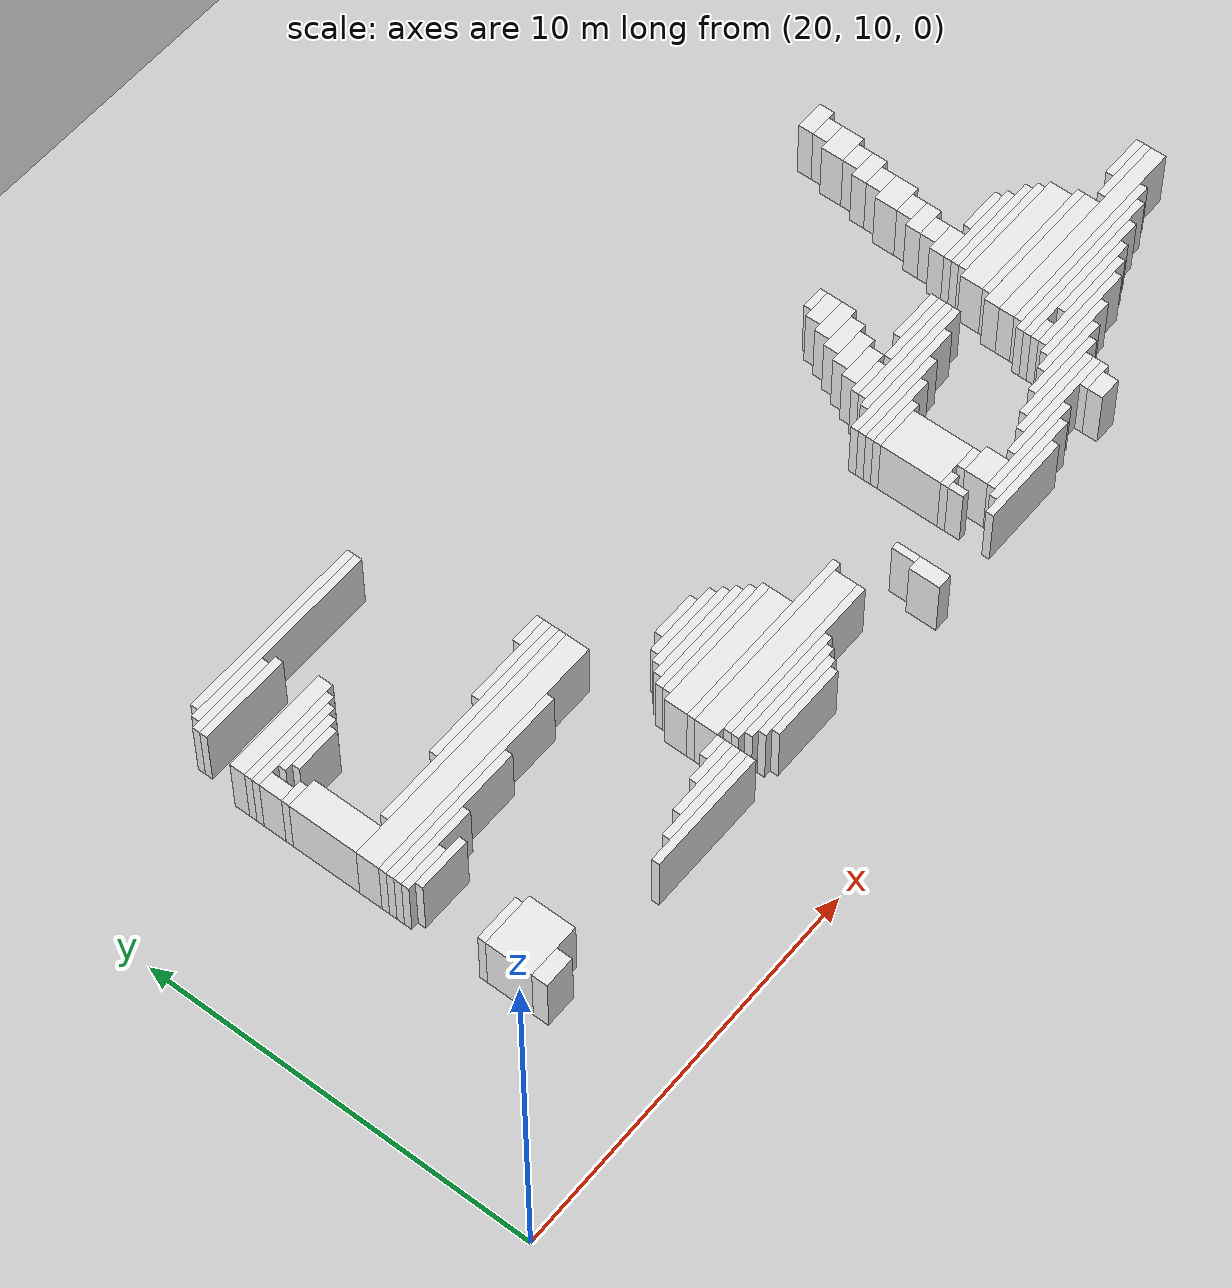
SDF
<sdf version="1.7">
 <world name="default">
  <model name="ground_plane">
   <static>1</static>
   <link name="link">
    <collision name="collision">
     <geometry><plane><normal>0 0 1</normal><size>120 120</size></plane></geometry>
    </collision>
    <visual name="visual">
     <geometry><plane><normal>0 0 1</normal><size>120 120</size></plane></geometry>
     <material>
      <script><uri>file://media/materials/scripts/gazebo.material</uri><name>Gazebo/Grey</name></script>
     </material>
    </visual>
   </link>
  </model>
  <model name="random_complex_01_model">
   <static>1</static>
   <link name="obs_915">
    <pose>27.1000 22.7000 0.8000 0 0 0</pose>
    <collision name="obs_915_col"><geometry><box><size>5.0000 0.2000 1.6000</size></box></geometry></collision>
    <visual name="obs_915_vis">
     <geometry><box><size>5.0000 0.2000 1.6000</size></box></geometry>
     <material>
      <script><uri>file://media/materials/scripts/gazebo.material</uri><name>Gazebo/White</name></script>
     </material>
    </visual>
   </link>
   <link name="obs_925">
    <pose>27.0000 22.5000 0.8000 0 0 0</pose>
    <collision name="obs_925_col"><geometry><box><size>5.2000 0.2000 1.6000</size></box></geometry></collision>
    <visual name="obs_925_vis">
     <geometry><box><size>5.2000 0.2000 1.6000</size></box></geometry>
     <material>
      <script><uri>file://media/materials/scripts/gazebo.material</uri><name>Gazebo/White</name></script>
     </material>
    </visual>
   </link>
   <link name="obs_931">
    <pose>25.3000 22.3000 0.8000 0 0 0</pose>
    <collision name="obs_931_col"><geometry><box><size>2.2000 0.2000 1.6000</size></box></geometry></collision>
    <visual name="obs_931_vis">
     <geometry><box><size>2.2000 0.2000 1.6000</size></box></geometry>
     <material>
      <script><uri>file://media/materials/scripts/gazebo.material</uri><name>Gazebo/White</name></script>
     </material>
    </visual>
   </link>
   <link name="obs_934">
    <pose>45.2000 22.2000 0.8000 0 0 0</pose>
    <collision name="obs_934_col"><geometry><box><size>0.8000 0.4000 1.6000</size></box></geometry></collision>
    <visual name="obs_934_vis">
     <geometry><box><size>0.8000 0.4000 1.6000</size></box></geometry>
     <material>
      <script><uri>file://media/materials/scripts/gazebo.material</uri><name>Gazebo/White</name></script>
     </material>
    </visual>
   </link>
   <link name="obs_939">
    <pose>25.4000 22.1000 0.8000 0 0 0</pose>
    <collision name="obs_939_col"><geometry><box><size>2.4000 0.2000 1.6000</size></box></geometry></collision>
    <visual name="obs_939_vis">
     <geometry><box><size>2.4000 0.2000 1.6000</size></box></geometry>
     <material>
      <script><uri>file://media/materials/scripts/gazebo.material</uri><name>Gazebo/White</name></script>
     </material>
    </visual>
   </link>
   <link name="obs_952">
    <pose>45.1000 21.8000 0.8000 0 0 0</pose>
    <collision name="obs_952_col"><geometry><box><size>0.6000 0.4000 1.6000</size></box></geometry></collision>
    <visual name="obs_952_vis">
     <geometry><box><size>0.6000 0.4000 1.6000</size></box></geometry>
     <material>
      <script><uri>file://media/materials/scripts/gazebo.material</uri><name>Gazebo/White</name></script>
     </material>
    </visual>
   </link>
   <link name="obs_959">
    <pose>45.0000 21.3000 0.8000 0 0 0</pose>
    <collision name="obs_959_col"><geometry><box><size>0.8000 0.6000 1.6000</size></box></geometry></collision>
    <visual name="obs_959_vis">
     <geometry><box><size>0.8000 0.6000 1.6000</size></box></geometry>
     <material>
      <script><uri>file://media/materials/scripts/gazebo.material</uri><name>Gazebo/White</name></script>
     </material>
    </visual>
   </link>
   <link name="obs_962">
    <pose>25.4000 21.0000 0.8000 0 0 0</pose>
    <collision name="obs_962_col"><geometry><box><size>2.8000 0.4000 1.6000</size></box></geometry></collision>
    <visual name="obs_962_vis">
     <geometry><box><size>2.8000 0.4000 1.6000</size></box></geometry>
     <material>
      <script><uri>file://media/materials/scripts/gazebo.material</uri><name>Gazebo/White</name></script>
     </material>
    </visual>
   </link>
   <link name="obs_963">
    <pose>44.9000 20.8000 0.8000 0 0 0</pose>
    <collision name="obs_963_col"><geometry><box><size>0.6000 0.4000 1.6000</size></box></geometry></collision>
    <visual name="obs_963_vis">
     <geometry><box><size>0.6000 0.4000 1.6000</size></box></geometry>
     <material>
      <script><uri>file://media/materials/scripts/gazebo.material</uri><name>Gazebo/White</name></script>
     </material>
    </visual>
   </link>
   <link name="obs_967">
    <pose>25.3000 20.7000 0.8000 0 0 0</pose>
    <collision name="obs_967_col"><geometry><box><size>2.6000 0.2000 1.6000</size></box></geometry></collision>
    <visual name="obs_967_vis">
     <geometry><box><size>2.6000 0.2000 1.6000</size></box></geometry>
     <material>
      <script><uri>file://media/materials/scripts/gazebo.material</uri><name>Gazebo/White</name></script>
     </material>
    </visual>
   </link>
   <link name="obs_971">
    <pose>25.2000 20.5000 0.8000 0 0 0</pose>
    <collision name="obs_971_col"><geometry><box><size>2.4000 0.2000 1.6000</size></box></geometry></collision>
    <visual name="obs_971_vis">
     <geometry><box><size>2.4000 0.2000 1.6000</size></box></geometry>
     <material>
      <script><uri>file://media/materials/scripts/gazebo.material</uri><name>Gazebo/White</name></script>
     </material>
    </visual>
   </link>
   <link name="obs_972">
    <pose>44.8000 20.4000 0.8000 0 0 0</pose>
    <collision name="obs_972_col"><geometry><box><size>0.8000 0.4000 1.6000</size></box></geometry></collision>
    <visual name="obs_972_vis">
     <geometry><box><size>0.8000 0.4000 1.6000</size></box></geometry>
     <material>
      <script><uri>file://media/materials/scripts/gazebo.material</uri><name>Gazebo/White</name></script>
     </material>
    </visual>
   </link>
   <link name="obs_976">
    <pose>25.4000 20.3000 0.8000 0 0 0</pose>
    <collision name="obs_976_col"><geometry><box><size>1.6000 0.2000 1.6000</size></box></geometry></collision>
    <visual name="obs_976_vis">
     <geometry><box><size>1.6000 0.2000 1.6000</size></box></geometry>
     <material>
      <script><uri>file://media/materials/scripts/gazebo.material</uri><name>Gazebo/White</name></script>
     </material>
    </visual>
   </link>
   <link name="obs_984">
    <pose>25.4000 20.1000 0.8000 0 0 0</pose>
    <collision name="obs_984_col"><geometry><box><size>1.2000 0.2000 1.6000</size></box></geometry></collision>
    <visual name="obs_984_vis">
     <geometry><box><size>1.2000 0.2000 1.6000</size></box></geometry>
     <material>
      <script><uri>file://media/materials/scripts/gazebo.material</uri><name>Gazebo/White</name></script>
     </material>
    </visual>
   </link>
   <link name="obs_985">
    <pose>24.2000 20.1000 0.8000 0 0 0</pose>
    <collision name="obs_985_col"><geometry><box><size>0.4000 0.6000 1.6000</size></box></geometry></collision>
    <visual name="obs_985_vis">
     <geometry><box><size>0.4000 0.6000 1.6000</size></box></geometry>
     <material>
      <script><uri>file://media/materials/scripts/gazebo.material</uri><name>Gazebo/White</name></script>
     </material>
    </visual>
   </link>
   <link name="obs_987">
    <pose>44.7000 20.0000 0.8000 0 0 0</pose>
    <collision name="obs_987_col"><geometry><box><size>0.6000 0.4000 1.6000</size></box></geometry></collision>
    <visual name="obs_987_vis">
     <geometry><box><size>0.6000 0.4000 1.6000</size></box></geometry>
     <material>
      <script><uri>file://media/materials/scripts/gazebo.material</uri><name>Gazebo/White</name></script>
     </material>
    </visual>
   </link>
   <link name="obs_996">
    <pose>24.3000 19.7000 0.8000 0 0 0</pose>
    <collision name="obs_996_col"><geometry><box><size>0.6000 0.2000 1.6000</size></box></geometry></collision>
    <visual name="obs_996_vis">
     <geometry><box><size>0.6000 0.2000 1.6000</size></box></geometry>
     <material>
      <script><uri>file://media/materials/scripts/gazebo.material</uri><name>Gazebo/White</name></script>
     </material>
    </visual>
   </link>
   <link name="obs_1003">
    <pose>44.6000 19.5000 0.8000 0 0 0</pose>
    <collision name="obs_1003_col"><geometry><box><size>0.8000 0.6000 1.6000</size></box></geometry></collision>
    <visual name="obs_1003_vis">
     <geometry><box><size>0.8000 0.6000 1.6000</size></box></geometry>
     <material>
      <script><uri>file://media/materials/scripts/gazebo.material</uri><name>Gazebo/White</name></script>
     </material>
    </visual>
   </link>
   <link name="obs_1014">
    <pose>41.1000 19.1000 0.8000 0 0 0</pose>
    <collision name="obs_1014_col"><geometry><box><size>0.6000 0.2000 1.6000</size></box></geometry></collision>
    <visual name="obs_1014_vis">
     <geometry><box><size>0.6000 0.2000 1.6000</size></box></geometry>
     <material>
      <script><uri>file://media/materials/scripts/gazebo.material</uri><name>Gazebo/White</name></script>
     </material>
    </visual>
   </link>
   <link name="obs_1015">
    <pose>44.5000 19.0000 0.8000 0 0 0</pose>
    <collision name="obs_1015_col"><geometry><box><size>0.6000 0.4000 1.6000</size></box></geometry></collision>
    <visual name="obs_1015_vis">
     <geometry><box><size>0.6000 0.4000 1.6000</size></box></geometry>
     <material>
      <script><uri>file://media/materials/scripts/gazebo.material</uri><name>Gazebo/White</name></script>
     </material>
    </visual>
   </link>
   <link name="obs_1024">
    <pose>41.0000 18.8000 0.8000 0 0 0</pose>
    <collision name="obs_1024_col"><geometry><box><size>0.8000 0.4000 1.6000</size></box></geometry></collision>
    <visual name="obs_1024_vis">
     <geometry><box><size>0.8000 0.4000 1.6000</size></box></geometry>
     <material>
      <script><uri>file://media/materials/scripts/gazebo.material</uri><name>Gazebo/White</name></script>
     </material>
    </visual>
   </link>
   <link name="obs_1029">
    <pose>44.4000 18.6000 0.8000 0 0 0</pose>
    <collision name="obs_1029_col"><geometry><box><size>0.8000 0.4000 1.6000</size></box></geometry></collision>
    <visual name="obs_1029_vis">
     <geometry><box><size>0.8000 0.4000 1.6000</size></box></geometry>
     <material>
      <script><uri>file://media/materials/scripts/gazebo.material</uri><name>Gazebo/White</name></script>
     </material>
    </visual>
   </link>
   <link name="obs_1032">
    <pose>30.4000 18.5000 0.8000 0 0 0</pose>
    <collision name="obs_1032_col"><geometry><box><size>0.8000 0.2000 1.6000</size></box></geometry></collision>
    <visual name="obs_1032_vis">
     <geometry><box><size>0.8000 0.2000 1.6000</size></box></geometry>
     <material>
      <script><uri>file://media/materials/scripts/gazebo.material</uri><name>Gazebo/White</name></script>
     </material>
    </visual>
   </link>
   <link name="obs_1037">
    <pose>40.9000 18.4000 0.8000 0 0 0</pose>
    <collision name="obs_1037_col"><geometry><box><size>1.0000 0.4000 1.6000</size></box></geometry></collision>
    <visual name="obs_1037_vis">
     <geometry><box><size>1.0000 0.4000 1.6000</size></box></geometry>
     <material>
      <script><uri>file://media/materials/scripts/gazebo.material</uri><name>Gazebo/White</name></script>
     </material>
    </visual>
   </link>
   <link name="obs_1044">
    <pose>29.6000 18.3000 0.8000 0 0 0</pose>
    <collision name="obs_1044_col"><geometry><box><size>2.4000 0.2000 1.6000</size></box></geometry></collision>
    <visual name="obs_1044_vis">
     <geometry><box><size>2.4000 0.2000 1.6000</size></box></geometry>
     <material>
      <script><uri>file://media/materials/scripts/gazebo.material</uri><name>Gazebo/White</name></script>
     </material>
    </visual>
   </link>
   <link name="obs_1046">
    <pose>44.3000 18.2000 0.8000 0 0 0</pose>
    <collision name="obs_1046_col"><geometry><box><size>0.6000 0.4000 1.6000</size></box></geometry></collision>
    <visual name="obs_1046_vis">
     <geometry><box><size>0.6000 0.4000 1.6000</size></box></geometry>
     <material>
      <script><uri>file://media/materials/scripts/gazebo.material</uri><name>Gazebo/White</name></script>
     </material>
    </visual>
   </link>
   <link name="obs_1052">
    <pose>28.8000 18.1000 0.8000 0 0 0</pose>
    <collision name="obs_1052_col"><geometry><box><size>4.0000 0.2000 1.6000</size></box></geometry></collision>
    <visual name="obs_1052_vis">
     <geometry><box><size>4.0000 0.2000 1.6000</size></box></geometry>
     <material>
      <script><uri>file://media/materials/scripts/gazebo.material</uri><name>Gazebo/White</name></script>
     </material>
    </visual>
   </link>
   <link name="obs_1053">
    <pose>24.4000 18.7000 0.8000 0 0 0</pose>
    <collision name="obs_1053_col"><geometry><box><size>0.8000 1.8000 1.6000</size></box></geometry></collision>
    <visual name="obs_1053_vis">
     <geometry><box><size>0.8000 1.8000 1.6000</size></box></geometry>
     <material>
      <script><uri>file://media/materials/scripts/gazebo.material</uri><name>Gazebo/White</name></script>
     </material>
    </visual>
   </link>
   <link name="obs_1059">
    <pose>40.7000 18.0000 0.8000 0 0 0</pose>
    <collision name="obs_1059_col"><geometry><box><size>1.0000 0.4000 1.6000</size></box></geometry></collision>
    <visual name="obs_1059_vis">
     <geometry><box><size>1.0000 0.4000 1.6000</size></box></geometry>
     <material>
      <script><uri>file://media/materials/scripts/gazebo.material</uri><name>Gazebo/White</name></script>
     </material>
    </visual>
   </link>
   <link name="obs_1065">
    <pose>27.9000 17.9000 0.8000 0 0 0</pose>
    <collision name="obs_1065_col"><geometry><box><size>5.8000 0.2000 1.6000</size></box></geometry></collision>
    <visual name="obs_1065_vis">
     <geometry><box><size>5.8000 0.2000 1.6000</size></box></geometry>
     <material>
      <script><uri>file://media/materials/scripts/gazebo.material</uri><name>Gazebo/White</name></script>
     </material>
    </visual>
   </link>
   <link name="obs_1067">
    <pose>44.2000 17.8000 0.8000 0 0 0</pose>
    <collision name="obs_1067_col"><geometry><box><size>0.8000 0.4000 1.6000</size></box></geometry></collision>
    <visual name="obs_1067_vis">
     <geometry><box><size>0.8000 0.4000 1.6000</size></box></geometry>
     <material>
      <script><uri>file://media/materials/scripts/gazebo.material</uri><name>Gazebo/White</name></script>
     </material>
    </visual>
   </link>
   <link name="obs_1072">
    <pose>45.4000 17.7000 0.8000 0 0 0</pose>
    <collision name="obs_1072_col"><geometry><box><size>1.2000 0.2000 1.6000</size></box></geometry></collision>
    <visual name="obs_1072_vis">
     <geometry><box><size>1.2000 0.2000 1.6000</size></box></geometry>
     <material>
      <script><uri>file://media/materials/scripts/gazebo.material</uri><name>Gazebo/White</name></script>
     </material>
    </visual>
   </link>
   <link name="obs_1075">
    <pose>40.5000 17.6000 0.8000 0 0 0</pose>
    <collision name="obs_1075_col"><geometry><box><size>1.0000 0.4000 1.6000</size></box></geometry></collision>
    <visual name="obs_1075_vis">
     <geometry><box><size>1.0000 0.4000 1.6000</size></box></geometry>
     <material>
      <script><uri>file://media/materials/scripts/gazebo.material</uri><name>Gazebo/White</name></script>
     </material>
    </visual>
   </link>
   <link name="obs_1079">
    <pose>45.0000 17.5000 0.8000 0 0 0</pose>
    <collision name="obs_1079_col"><geometry><box><size>2.4000 0.2000 1.6000</size></box></geometry></collision>
    <visual name="obs_1079_vis">
     <geometry><box><size>2.4000 0.2000 1.6000</size></box></geometry>
     <material>
      <script><uri>file://media/materials/scripts/gazebo.material</uri><name>Gazebo/White</name></script>
     </material>
    </visual>
   </link>
   <link name="obs_1081">
    <pose>27.4000 17.5000 0.8000 0 0 0</pose>
    <collision name="obs_1081_col"><geometry><box><size>6.8000 0.6000 1.6000</size></box></geometry></collision>
    <visual name="obs_1081_vis">
     <geometry><box><size>6.8000 0.6000 1.6000</size></box></geometry>
     <material>
      <script><uri>file://media/materials/scripts/gazebo.material</uri><name>Gazebo/White</name></script>
     </material>
    </visual>
   </link>
   <link name="obs_1086">
    <pose>45.2000 17.3000 0.8000 0 0 0</pose>
    <collision name="obs_1086_col"><geometry><box><size>2.8000 0.2000 1.6000</size></box></geometry></collision>
    <visual name="obs_1086_vis">
     <geometry><box><size>2.8000 0.2000 1.6000</size></box></geometry>
     <material>
      <script><uri>file://media/materials/scripts/gazebo.material</uri><name>Gazebo/White</name></script>
     </material>
    </visual>
   </link>
   <link name="obs_1089">
    <pose>40.3000 17.2000 0.8000 0 0 0</pose>
    <collision name="obs_1089_col"><geometry><box><size>1.0000 0.4000 1.6000</size></box></geometry></collision>
    <visual name="obs_1089_vis">
     <geometry><box><size>1.0000 0.4000 1.6000</size></box></geometry>
     <material>
      <script><uri>file://media/materials/scripts/gazebo.material</uri><name>Gazebo/White</name></script>
     </material>
    </visual>
   </link>
   <link name="obs_1094">
    <pose>26.7000 17.1000 0.8000 0 0 0</pose>
    <collision name="obs_1094_col"><geometry><box><size>5.4000 0.2000 1.6000</size></box></geometry></collision>
    <visual name="obs_1094_vis">
     <geometry><box><size>5.4000 0.2000 1.6000</size></box></geometry>
     <material>
      <script><uri>file://media/materials/scripts/gazebo.material</uri><name>Gazebo/White</name></script>
     </material>
    </visual>
   </link>
   <link name="obs_1095">
    <pose>42.1000 17.1000 0.8000 0 0 0</pose>
    <collision name="obs_1095_col"><geometry><box><size>1.4000 0.2000 1.6000</size></box></geometry></collision>
    <visual name="obs_1095_vis">
     <geometry><box><size>1.4000 0.2000 1.6000</size></box></geometry>
     <material>
      <script><uri>file://media/materials/scripts/gazebo.material</uri><name>Gazebo/White</name></script>
     </material>
    </visual>
   </link>
   <link name="obs_1096">
    <pose>45.3000 17.1000 0.8000 0 0 0</pose>
    <collision name="obs_1096_col"><geometry><box><size>3.0000 0.2000 1.6000</size></box></geometry></collision>
    <visual name="obs_1096_vis">
     <geometry><box><size>3.0000 0.2000 1.6000</size></box></geometry>
     <material>
      <script><uri>file://media/materials/scripts/gazebo.material</uri><name>Gazebo/White</name></script>
     </material>
    </visual>
   </link>
   <link name="obs_1101">
    <pose>25.9000 16.9000 0.8000 0 0 0</pose>
    <collision name="obs_1101_col"><geometry><box><size>3.8000 0.2000 1.6000</size></box></geometry></collision>
    <visual name="obs_1101_vis">
     <geometry><box><size>3.8000 0.2000 1.6000</size></box></geometry>
     <material>
      <script><uri>file://media/materials/scripts/gazebo.material</uri><name>Gazebo/White</name></script>
     </material>
    </visual>
   </link>
   <link name="obs_1102">
    <pose>40.1000 16.9000 0.8000 0 0 0</pose>
    <collision name="obs_1102_col"><geometry><box><size>1.0000 0.2000 1.6000</size></box></geometry></collision>
    <visual name="obs_1102_vis">
     <geometry><box><size>1.0000 0.2000 1.6000</size></box></geometry>
     <material>
      <script><uri>file://media/materials/scripts/gazebo.material</uri><name>Gazebo/White</name></script>
     </material>
    </visual>
   </link>
   <link name="obs_1103">
    <pose>41.8000 16.9000 0.8000 0 0 0</pose>
    <collision name="obs_1103_col"><geometry><box><size>2.0000 0.2000 1.6000</size></box></geometry></collision>
    <visual name="obs_1103_vis">
     <geometry><box><size>2.0000 0.2000 1.6000</size></box></geometry>
     <material>
      <script><uri>file://media/materials/scripts/gazebo.material</uri><name>Gazebo/White</name></script>
     </material>
    </visual>
   </link>
   <link name="obs_1112">
    <pose>25.1000 16.7000 0.8000 0 0 0</pose>
    <collision name="obs_1112_col"><geometry><box><size>2.2000 0.2000 1.6000</size></box></geometry></collision>
    <visual name="obs_1112_vis">
     <geometry><box><size>2.2000 0.2000 1.6000</size></box></geometry>
     <material>
      <script><uri>file://media/materials/scripts/gazebo.material</uri><name>Gazebo/White</name></script>
     </material>
    </visual>
   </link>
   <link name="obs_1113">
    <pose>41.2000 16.7000 0.8000 0 0 0</pose>
    <collision name="obs_1113_col"><geometry><box><size>3.2000 0.2000 1.6000</size></box></geometry></collision>
    <visual name="obs_1113_vis">
     <geometry><box><size>3.2000 0.2000 1.6000</size></box></geometry>
     <material>
      <script><uri>file://media/materials/scripts/gazebo.material</uri><name>Gazebo/White</name></script>
     </material>
    </visual>
   </link>
   <link name="obs_1114">
    <pose>45.3000 16.7000 0.8000 0 0 0</pose>
    <collision name="obs_1114_col"><geometry><box><size>3.4000 0.6000 1.6000</size></box></geometry></collision>
    <visual name="obs_1114_vis">
     <geometry><box><size>3.4000 0.6000 1.6000</size></box></geometry>
     <material>
      <script><uri>file://media/materials/scripts/gazebo.material</uri><name>Gazebo/White</name></script>
     </material>
    </visual>
   </link>
   <link name="obs_1119">
    <pose>24.6000 16.5000 0.8000 0 0 0</pose>
    <collision name="obs_1119_col"><geometry><box><size>1.2000 0.2000 1.6000</size></box></geometry></collision>
    <visual name="obs_1119_vis">
     <geometry><box><size>1.2000 0.2000 1.6000</size></box></geometry>
     <material>
      <script><uri>file://media/materials/scripts/gazebo.material</uri><name>Gazebo/White</name></script>
     </material>
    </visual>
   </link>
   <link name="obs_1120">
    <pose>41.1000 16.5000 0.8000 0 0 0</pose>
    <collision name="obs_1120_col"><geometry><box><size>3.4000 0.2000 1.6000</size></box></geometry></collision>
    <visual name="obs_1120_vis">
     <geometry><box><size>3.4000 0.2000 1.6000</size></box></geometry>
     <material>
      <script><uri>file://media/materials/scripts/gazebo.material</uri><name>Gazebo/White</name></script>
     </material>
    </visual>
   </link>
   <link name="obs_1127">
    <pose>24.9000 16.3000 0.8000 0 0 0</pose>
    <collision name="obs_1127_col"><geometry><box><size>1.4000 0.2000 1.6000</size></box></geometry></collision>
    <visual name="obs_1127_vis">
     <geometry><box><size>1.4000 0.2000 1.6000</size></box></geometry>
     <material>
      <script><uri>file://media/materials/scripts/gazebo.material</uri><name>Gazebo/White</name></script>
     </material>
    </visual>
   </link>
   <link name="obs_1128">
    <pose>32.6000 16.3000 0.8000 0 0 0</pose>
    <collision name="obs_1128_col"><geometry><box><size>1.2000 0.2000 1.6000</size></box></geometry></collision>
    <visual name="obs_1128_vis">
     <geometry><box><size>1.2000 0.2000 1.6000</size></box></geometry>
     <material>
      <script><uri>file://media/materials/scripts/gazebo.material</uri><name>Gazebo/White</name></script>
     </material>
    </visual>
   </link>
   <link name="obs_1129">
    <pose>40.5000 16.3000 0.8000 0 0 0</pose>
    <collision name="obs_1129_col"><geometry><box><size>3.4000 0.2000 1.6000</size></box></geometry></collision>
    <visual name="obs_1129_vis">
     <geometry><box><size>3.4000 0.2000 1.6000</size></box></geometry>
     <material>
      <script><uri>file://media/materials/scripts/gazebo.material</uri><name>Gazebo/White</name></script>
     </material>
    </visual>
   </link>
   <link name="obs_1130">
    <pose>45.4000 16.3000 0.8000 0 0 0</pose>
    <collision name="obs_1130_col"><geometry><box><size>3.6000 0.2000 1.6000</size></box></geometry></collision>
    <visual name="obs_1130_vis">
     <geometry><box><size>3.6000 0.2000 1.6000</size></box></geometry>
     <material>
      <script><uri>file://media/materials/scripts/gazebo.material</uri><name>Gazebo/White</name></script>
     </material>
    </visual>
   </link>
   <link name="obs_1137">
    <pose>32.6000 16.1000 0.8000 0 0 0</pose>
    <collision name="obs_1137_col"><geometry><box><size>2.0000 0.2000 1.6000</size></box></geometry></collision>
    <visual name="obs_1137_vis">
     <geometry><box><size>2.0000 0.2000 1.6000</size></box></geometry>
     <material>
      <script><uri>file://media/materials/scripts/gazebo.material</uri><name>Gazebo/White</name></script>
     </material>
    </visual>
   </link>
   <link name="obs_1138">
    <pose>40.1000 16.1000 0.8000 0 0 0</pose>
    <collision name="obs_1138_col"><geometry><box><size>2.6000 0.2000 1.6000</size></box></geometry></collision>
    <visual name="obs_1138_vis">
     <geometry><box><size>2.6000 0.2000 1.6000</size></box></geometry>
     <material>
      <script><uri>file://media/materials/scripts/gazebo.material</uri><name>Gazebo/White</name></script>
     </material>
    </visual>
   </link>
   <link name="obs_1139">
    <pose>48.6000 16.1000 0.8000 0 0 0</pose>
    <collision name="obs_1139_col"><geometry><box><size>1.2000 0.2000 1.6000</size></box></geometry></collision>
    <visual name="obs_1139_vis">
     <geometry><box><size>1.2000 0.2000 1.6000</size></box></geometry>
     <material>
      <script><uri>file://media/materials/scripts/gazebo.material</uri><name>Gazebo/White</name></script>
     </material>
    </visual>
   </link>
   <link name="obs_1142">
    <pose>45.3000 16.0000 0.8000 0 0 0</pose>
    <collision name="obs_1142_col"><geometry><box><size>3.8000 0.4000 1.6000</size></box></geometry></collision>
    <visual name="obs_1142_vis">
     <geometry><box><size>3.8000 0.4000 1.6000</size></box></geometry>
     <material>
      <script><uri>file://media/materials/scripts/gazebo.material</uri><name>Gazebo/White</name></script>
     </material>
    </visual>
   </link>
   <link name="obs_1146">
    <pose>32.6000 15.9000 0.8000 0 0 0</pose>
    <collision name="obs_1146_col"><geometry><box><size>2.4000 0.2000 1.6000</size></box></geometry></collision>
    <visual name="obs_1146_vis">
     <geometry><box><size>2.4000 0.2000 1.6000</size></box></geometry>
     <material>
      <script><uri>file://media/materials/scripts/gazebo.material</uri><name>Gazebo/White</name></script>
     </material>
    </visual>
   </link>
   <link name="obs_1147">
    <pose>39.8000 15.9000 0.8000 0 0 0</pose>
    <collision name="obs_1147_col"><geometry><box><size>2.0000 0.2000 1.6000</size></box></geometry></collision>
    <visual name="obs_1147_vis">
     <geometry><box><size>2.0000 0.2000 1.6000</size></box></geometry>
     <material>
      <script><uri>file://media/materials/scripts/gazebo.material</uri><name>Gazebo/White</name></script>
     </material>
    </visual>
   </link>
   <link name="obs_1148">
    <pose>48.3000 15.9000 0.8000 0 0 0</pose>
    <collision name="obs_1148_col"><geometry><box><size>1.8000 0.2000 1.6000</size></box></geometry></collision>
    <visual name="obs_1148_vis">
     <geometry><box><size>1.8000 0.2000 1.6000</size></box></geometry>
     <material>
      <script><uri>file://media/materials/scripts/gazebo.material</uri><name>Gazebo/White</name></script>
     </material>
    </visual>
   </link>
   <link name="obs_1156">
    <pose>32.6000 15.7000 0.8000 0 0 0</pose>
    <collision name="obs_1156_col"><geometry><box><size>2.8000 0.2000 1.6000</size></box></geometry></collision>
    <visual name="obs_1156_vis">
     <geometry><box><size>2.8000 0.2000 1.6000</size></box></geometry>
     <material>
      <script><uri>file://media/materials/scripts/gazebo.material</uri><name>Gazebo/White</name></script>
     </material>
    </visual>
   </link>
   <link name="obs_1157">
    <pose>39.5000 15.7000 0.8000 0 0 0</pose>
    <collision name="obs_1157_col"><geometry><box><size>1.4000 0.2000 1.6000</size></box></geometry></collision>
    <visual name="obs_1157_vis">
     <geometry><box><size>1.4000 0.2000 1.6000</size></box></geometry>
     <material>
      <script><uri>file://media/materials/scripts/gazebo.material</uri><name>Gazebo/White</name></script>
     </material>
    </visual>
   </link>
   <link name="obs_1158">
    <pose>46.3000 15.6000 0.8000 0 0 0</pose>
    <collision name="obs_1158_col"><geometry><box><size>5.8000 0.4000 1.6000</size></box></geometry></collision>
    <visual name="obs_1158_vis">
     <geometry><box><size>5.8000 0.4000 1.6000</size></box></geometry>
     <material>
      <script><uri>file://media/materials/scripts/gazebo.material</uri><name>Gazebo/White</name></script>
     </material>
    </visual>
   </link>
   <link name="obs_1164">
    <pose>32.6000 15.5000 0.8000 0 0 0</pose>
    <collision name="obs_1164_col"><geometry><box><size>3.2000 0.2000 1.6000</size></box></geometry></collision>
    <visual name="obs_1164_vis">
     <geometry><box><size>3.2000 0.2000 1.6000</size></box></geometry>
     <material>
      <script><uri>file://media/materials/scripts/gazebo.material</uri><name>Gazebo/White</name></script>
     </material>
    </visual>
   </link>
   <link name="obs_1175">
    <pose>32.7000 15.3000 0.8000 0 0 0</pose>
    <collision name="obs_1175_col"><geometry><box><size>3.4000 0.2000 1.6000</size></box></geometry></collision>
    <visual name="obs_1175_vis">
     <geometry><box><size>3.4000 0.2000 1.6000</size></box></geometry>
     <material>
      <script><uri>file://media/materials/scripts/gazebo.material</uri><name>Gazebo/White</name></script>
     </material>
    </visual>
   </link>
   <link name="obs_1176">
    <pose>45.8000 15.3000 0.8000 0 0 0</pose>
    <collision name="obs_1176_col"><geometry><box><size>4.8000 0.2000 1.6000</size></box></geometry></collision>
    <visual name="obs_1176_vis">
     <geometry><box><size>4.8000 0.2000 1.6000</size></box></geometry>
     <material>
      <script><uri>file://media/materials/scripts/gazebo.material</uri><name>Gazebo/White</name></script>
     </material>
    </visual>
   </link>
   <link name="obs_1181">
    <pose>45.5000 15.1000 0.8000 0 0 0</pose>
    <collision name="obs_1181_col"><geometry><box><size>4.6000 0.2000 1.6000</size></box></geometry></collision>
    <visual name="obs_1181_vis">
     <geometry><box><size>4.6000 0.2000 1.6000</size></box></geometry>
     <material>
      <script><uri>file://media/materials/scripts/gazebo.material</uri><name>Gazebo/White</name></script>
     </material>
    </visual>
   </link>
   <link name="obs_1189">
    <pose>45.2000 14.9000 0.8000 0 0 0</pose>
    <collision name="obs_1189_col"><geometry><box><size>4.0000 0.2000 1.6000</size></box></geometry></collision>
    <visual name="obs_1189_vis">
     <geometry><box><size>4.0000 0.2000 1.6000</size></box></geometry>
     <material>
      <script><uri>file://media/materials/scripts/gazebo.material</uri><name>Gazebo/White</name></script>
     </material>
    </visual>
   </link>
   <link name="obs_1191">
    <pose>32.6000 14.9000 0.8000 0 0 0</pose>
    <collision name="obs_1191_col"><geometry><box><size>3.6000 0.6000 1.6000</size></box></geometry></collision>
    <visual name="obs_1191_vis">
     <geometry><box><size>3.6000 0.6000 1.6000</size></box></geometry>
     <material>
      <script><uri>file://media/materials/scripts/gazebo.material</uri><name>Gazebo/White</name></script>
     </material>
    </visual>
   </link>
   <link name="obs_1196">
    <pose>43.5000 14.7000 0.8000 0 0 0</pose>
    <collision name="obs_1196_col"><geometry><box><size>0.6000 0.2000 1.6000</size></box></geometry></collision>
    <visual name="obs_1196_vis">
     <geometry><box><size>0.6000 0.2000 1.6000</size></box></geometry>
     <material>
      <script><uri>file://media/materials/scripts/gazebo.material</uri><name>Gazebo/White</name></script>
     </material>
    </visual>
   </link>
   <link name="obs_1197">
    <pose>45.4000 14.7000 0.8000 0 0 0</pose>
    <collision name="obs_1197_col"><geometry><box><size>2.4000 0.2000 1.6000</size></box></geometry></collision>
    <visual name="obs_1197_vis">
     <geometry><box><size>2.4000 0.2000 1.6000</size></box></geometry>
     <material>
      <script><uri>file://media/materials/scripts/gazebo.material</uri><name>Gazebo/White</name></script>
     </material>
    </visual>
   </link>
   <link name="obs_1203">
    <pose>24.6000 14.5000 0.8000 0 0 0</pose>
    <collision name="obs_1203_col"><geometry><box><size>1.2000 0.2000 1.6000</size></box></geometry></collision>
    <visual name="obs_1203_vis">
     <geometry><box><size>1.2000 0.2000 1.6000</size></box></geometry>
     <material>
      <script><uri>file://media/materials/scripts/gazebo.material</uri><name>Gazebo/White</name></script>
     </material>
    </visual>
   </link>
   <link name="obs_1204">
    <pose>33.3000 14.5000 0.8000 0 0 0</pose>
    <collision name="obs_1204_col"><geometry><box><size>5.0000 0.2000 1.6000</size></box></geometry></collision>
    <visual name="obs_1204_vis">
     <geometry><box><size>5.0000 0.2000 1.6000</size></box></geometry>
     <material>
      <script><uri>file://media/materials/scripts/gazebo.material</uri><name>Gazebo/White</name></script>
     </material>
    </visual>
   </link>
   <link name="obs_1205">
    <pose>44.7000 14.5000 0.8000 0 0 0</pose>
    <collision name="obs_1205_col"><geometry><box><size>3.0000 0.2000 1.6000</size></box></geometry></collision>
    <visual name="obs_1205_vis">
     <geometry><box><size>3.0000 0.2000 1.6000</size></box></geometry>
     <material>
      <script><uri>file://media/materials/scripts/gazebo.material</uri><name>Gazebo/White</name></script>
     </material>
    </visual>
   </link>
   <link name="obs_1210">
    <pose>44.4000 14.3000 0.8000 0 0 0</pose>
    <collision name="obs_1210_col"><geometry><box><size>2.8000 0.2000 1.6000</size></box></geometry></collision>
    <visual name="obs_1210_vis">
     <geometry><box><size>2.8000 0.2000 1.6000</size></box></geometry>
     <material>
      <script><uri>file://media/materials/scripts/gazebo.material</uri><name>Gazebo/White</name></script>
     </material>
    </visual>
   </link>
   <link name="obs_1212">
    <pose>39.4000 14.8000 0.8000 0 0 0</pose>
    <collision name="obs_1212_col"><geometry><box><size>1.2000 1.6000 1.6000</size></box></geometry></collision>
    <visual name="obs_1212_vis">
     <geometry><box><size>1.2000 1.6000 1.6000</size></box></geometry>
     <material>
      <script><uri>file://media/materials/scripts/gazebo.material</uri><name>Gazebo/White</name></script>
     </material>
    </visual>
   </link>
   <link name="obs_1218">
    <pose>43.8000 14.1000 0.8000 0 0 0</pose>
    <collision name="obs_1218_col"><geometry><box><size>2.4000 0.2000 1.6000</size></box></geometry></collision>
    <visual name="obs_1218_vis">
     <geometry><box><size>2.4000 0.2000 1.6000</size></box></geometry>
     <material>
      <script><uri>file://media/materials/scripts/gazebo.material</uri><name>Gazebo/White</name></script>
     </material>
    </visual>
   </link>
   <link name="obs_1219">
    <pose>33.2000 14.1000 0.8000 0 0 0</pose>
    <collision name="obs_1219_col"><geometry><box><size>4.8000 0.6000 1.6000</size></box></geometry></collision>
    <visual name="obs_1219_vis">
     <geometry><box><size>4.8000 0.6000 1.6000</size></box></geometry>
     <material>
      <script><uri>file://media/materials/scripts/gazebo.material</uri><name>Gazebo/White</name></script>
     </material>
    </visual>
   </link>
   <link name="obs_1224">
    <pose>39.0000 13.9000 0.8000 0 0 0</pose>
    <collision name="obs_1224_col"><geometry><box><size>0.4000 0.2000 1.6000</size></box></geometry></collision>
    <visual name="obs_1224_vis">
     <geometry><box><size>0.4000 0.2000 1.6000</size></box></geometry>
     <material>
      <script><uri>file://media/materials/scripts/gazebo.material</uri><name>Gazebo/White</name></script>
     </material>
    </visual>
   </link>
   <link name="obs_1225">
    <pose>39.7000 13.9000 0.8000 0 0 0</pose>
    <collision name="obs_1225_col"><geometry><box><size>0.6000 0.2000 1.6000</size></box></geometry></collision>
    <visual name="obs_1225_vis">
     <geometry><box><size>0.6000 0.2000 1.6000</size></box></geometry>
     <material>
      <script><uri>file://media/materials/scripts/gazebo.material</uri><name>Gazebo/White</name></script>
     </material>
    </visual>
   </link>
   <link name="obs_1226">
    <pose>43.2000 13.9000 0.8000 0 0 0</pose>
    <collision name="obs_1226_col"><geometry><box><size>2.4000 0.2000 1.6000</size></box></geometry></collision>
    <visual name="obs_1226_vis">
     <geometry><box><size>2.4000 0.2000 1.6000</size></box></geometry>
     <material>
      <script><uri>file://media/materials/scripts/gazebo.material</uri><name>Gazebo/White</name></script>
     </material>
    </visual>
   </link>
   <link name="obs_1231">
    <pose>30.5000 13.7000 0.8000 0 0 0</pose>
    <collision name="obs_1231_col"><geometry><box><size>0.6000 0.2000 1.6000</size></box></geometry></collision>
    <visual name="obs_1231_vis">
     <geometry><box><size>0.6000 0.2000 1.6000</size></box></geometry>
     <material>
      <script><uri>file://media/materials/scripts/gazebo.material</uri><name>Gazebo/White</name></script>
     </material>
    </visual>
   </link>
   <link name="obs_1232">
    <pose>33.3000 13.7000 0.8000 0 0 0</pose>
    <collision name="obs_1232_col"><geometry><box><size>4.6000 0.2000 1.6000</size></box></geometry></collision>
    <visual name="obs_1232_vis">
     <geometry><box><size>4.6000 0.2000 1.6000</size></box></geometry>
     <material>
      <script><uri>file://media/materials/scripts/gazebo.material</uri><name>Gazebo/White</name></script>
     </material>
    </visual>
   </link>
   <link name="obs_1233">
    <pose>42.7000 13.7000 0.8000 0 0 0</pose>
    <collision name="obs_1233_col"><geometry><box><size>2.6000 0.2000 1.6000</size></box></geometry></collision>
    <visual name="obs_1233_vis">
     <geometry><box><size>2.6000 0.2000 1.6000</size></box></geometry>
     <material>
      <script><uri>file://media/materials/scripts/gazebo.material</uri><name>Gazebo/White</name></script>
     </material>
    </visual>
   </link>
   <link name="obs_1235">
    <pose>38.9000 13.6000 0.8000 0 0 0</pose>
    <collision name="obs_1235_col"><geometry><box><size>0.2000 0.4000 1.6000</size></box></geometry></collision>
    <visual name="obs_1235_vis">
     <geometry><box><size>0.2000 0.4000 1.6000</size></box></geometry>
     <material>
      <script><uri>file://media/materials/scripts/gazebo.material</uri><name>Gazebo/White</name></script>
     </material>
    </visual>
   </link>
   <link name="obs_1241">
    <pose>30.2000 13.5000 0.8000 0 0 0</pose>
    <collision name="obs_1241_col"><geometry><box><size>1.2000 0.2000 1.6000</size></box></geometry></collision>
    <visual name="obs_1241_vis">
     <geometry><box><size>1.2000 0.2000 1.6000</size></box></geometry>
     <material>
      <script><uri>file://media/materials/scripts/gazebo.material</uri><name>Gazebo/White</name></script>
     </material>
    </visual>
   </link>
   <link name="obs_1242">
    <pose>32.6000 13.5000 0.8000 0 0 0</pose>
    <collision name="obs_1242_col"><geometry><box><size>3.2000 0.2000 1.6000</size></box></geometry></collision>
    <visual name="obs_1242_vis">
     <geometry><box><size>3.2000 0.2000 1.6000</size></box></geometry>
     <material>
      <script><uri>file://media/materials/scripts/gazebo.material</uri><name>Gazebo/White</name></script>
     </material>
    </visual>
   </link>
   <link name="obs_1243">
    <pose>42.3000 13.5000 0.8000 0 0 0</pose>
    <collision name="obs_1243_col"><geometry><box><size>2.6000 0.2000 1.6000</size></box></geometry></collision>
    <visual name="obs_1243_vis">
     <geometry><box><size>2.6000 0.2000 1.6000</size></box></geometry>
     <material>
      <script><uri>file://media/materials/scripts/gazebo.material</uri><name>Gazebo/White</name></script>
     </material>
    </visual>
   </link>
   <link name="obs_1245">
    <pose>24.7000 13.8000 0.8000 0 0 0</pose>
    <collision name="obs_1245_col"><geometry><box><size>1.4000 1.2000 1.6000</size></box></geometry></collision>
    <visual name="obs_1245_vis">
     <geometry><box><size>1.4000 1.2000 1.6000</size></box></geometry>
     <material>
      <script><uri>file://media/materials/scripts/gazebo.material</uri><name>Gazebo/White</name></script>
     </material>
    </visual>
   </link>
   <link name="obs_1247">
    <pose>36.9000 13.5000 0.8000 0 0 0</pose>
    <collision name="obs_1247_col"><geometry><box><size>0.2000 0.6000 1.6000</size></box></geometry></collision>
    <visual name="obs_1247_vis">
     <geometry><box><size>0.2000 0.6000 1.6000</size></box></geometry>
     <material>
      <script><uri>file://media/materials/scripts/gazebo.material</uri><name>Gazebo/White</name></script>
     </material>
    </visual>
   </link>
   <link name="obs_1248">
    <pose>39.8000 13.5000 0.8000 0 0 0</pose>
    <collision name="obs_1248_col"><geometry><box><size>0.8000 0.6000 1.6000</size></box></geometry></collision>
    <visual name="obs_1248_vis">
     <geometry><box><size>0.8000 0.6000 1.6000</size></box></geometry>
     <material>
      <script><uri>file://media/materials/scripts/gazebo.material</uri><name>Gazebo/White</name></script>
     </material>
    </visual>
   </link>
   <link name="obs_1253">
    <pose>29.8000 13.3000 0.8000 0 0 0</pose>
    <collision name="obs_1253_col"><geometry><box><size>2.0000 0.2000 1.6000</size></box></geometry></collision>
    <visual name="obs_1253_vis">
     <geometry><box><size>2.0000 0.2000 1.6000</size></box></geometry>
     <material>
      <script><uri>file://media/materials/scripts/gazebo.material</uri><name>Gazebo/White</name></script>
     </material>
    </visual>
   </link>
   <link name="obs_1254">
    <pose>32.6000 13.3000 0.8000 0 0 0</pose>
    <collision name="obs_1254_col"><geometry><box><size>2.8000 0.2000 1.6000</size></box></geometry></collision>
    <visual name="obs_1254_vis">
     <geometry><box><size>2.8000 0.2000 1.6000</size></box></geometry>
     <material>
      <script><uri>file://media/materials/scripts/gazebo.material</uri><name>Gazebo/White</name></script>
     </material>
    </visual>
   </link>
   <link name="obs_1255">
    <pose>42.0000 13.3000 0.8000 0 0 0</pose>
    <collision name="obs_1255_col"><geometry><box><size>3.2000 0.2000 1.6000</size></box></geometry></collision>
    <visual name="obs_1255_vis">
     <geometry><box><size>3.2000 0.2000 1.6000</size></box></geometry>
     <material>
      <script><uri>file://media/materials/scripts/gazebo.material</uri><name>Gazebo/White</name></script>
     </material>
    </visual>
   </link>
   <link name="obs_1259">
    <pose>29.5000 13.1000 0.8000 0 0 0</pose>
    <collision name="obs_1259_col"><geometry><box><size>2.6000 0.2000 1.6000</size></box></geometry></collision>
    <visual name="obs_1259_vis">
     <geometry><box><size>2.6000 0.2000 1.6000</size></box></geometry>
     <material>
      <script><uri>file://media/materials/scripts/gazebo.material</uri><name>Gazebo/White</name></script>
     </material>
    </visual>
   </link>
   <link name="obs_1260">
    <pose>32.6000 13.1000 0.8000 0 0 0</pose>
    <collision name="obs_1260_col"><geometry><box><size>2.4000 0.2000 1.6000</size></box></geometry></collision>
    <visual name="obs_1260_vis">
     <geometry><box><size>2.4000 0.2000 1.6000</size></box></geometry>
     <material>
      <script><uri>file://media/materials/scripts/gazebo.material</uri><name>Gazebo/White</name></script>
     </material>
    </visual>
   </link>
   <link name="obs_1261">
    <pose>40.8000 13.1000 0.8000 0 0 0</pose>
    <collision name="obs_1261_col"><geometry><box><size>2.8000 0.2000 1.6000</size></box></geometry></collision>
    <visual name="obs_1261_vis">
     <geometry><box><size>2.8000 0.2000 1.6000</size></box></geometry>
     <material>
      <script><uri>file://media/materials/scripts/gazebo.material</uri><name>Gazebo/White</name></script>
     </material>
    </visual>
   </link>
   <link name="obs_1262">
    <pose>43.2000 13.1000 0.8000 0 0 0</pose>
    <collision name="obs_1262_col"><geometry><box><size>0.8000 0.2000 1.6000</size></box></geometry></collision>
    <visual name="obs_1262_vis">
     <geometry><box><size>0.8000 0.2000 1.6000</size></box></geometry>
     <material>
      <script><uri>file://media/materials/scripts/gazebo.material</uri><name>Gazebo/White</name></script>
     </material>
    </visual>
   </link>
   <link name="obs_1264">
    <pose>24.4000 13.0000 0.8000 0 0 0</pose>
    <collision name="obs_1264_col"><geometry><box><size>0.8000 0.4000 1.6000</size></box></geometry></collision>
    <visual name="obs_1264_vis">
     <geometry><box><size>0.8000 0.4000 1.6000</size></box></geometry>
     <material>
      <script><uri>file://media/materials/scripts/gazebo.material</uri><name>Gazebo/White</name></script>
     </material>
    </visual>
   </link>
   <link name="obs_1269">
    <pose>29.2000 12.9000 0.8000 0 0 0</pose>
    <collision name="obs_1269_col"><geometry><box><size>3.2000 0.2000 1.6000</size></box></geometry></collision>
    <visual name="obs_1269_vis">
     <geometry><box><size>3.2000 0.2000 1.6000</size></box></geometry>
     <material>
      <script><uri>file://media/materials/scripts/gazebo.material</uri><name>Gazebo/White</name></script>
     </material>
    </visual>
   </link>
   <link name="obs_1270">
    <pose>32.6000 12.9000 0.8000 0 0 0</pose>
    <collision name="obs_1270_col"><geometry><box><size>2.0000 0.2000 1.6000</size></box></geometry></collision>
    <visual name="obs_1270_vis">
     <geometry><box><size>2.0000 0.2000 1.6000</size></box></geometry>
     <material>
      <script><uri>file://media/materials/scripts/gazebo.material</uri><name>Gazebo/White</name></script>
     </material>
    </visual>
   </link>
   <link name="obs_1271">
    <pose>40.5000 12.9000 0.8000 0 0 0</pose>
    <collision name="obs_1271_col"><geometry><box><size>2.6000 0.2000 1.6000</size></box></geometry></collision>
    <visual name="obs_1271_vis">
     <geometry><box><size>2.6000 0.2000 1.6000</size></box></geometry>
     <material>
      <script><uri>file://media/materials/scripts/gazebo.material</uri><name>Gazebo/White</name></script>
     </material>
    </visual>
   </link>
   <link name="obs_1272">
    <pose>43.1000 12.8000 0.8000 0 0 0</pose>
    <collision name="obs_1272_col"><geometry><box><size>0.6000 0.4000 1.6000</size></box></geometry></collision>
    <visual name="obs_1272_vis">
     <geometry><box><size>0.6000 0.4000 1.6000</size></box></geometry>
     <material>
      <script><uri>file://media/materials/scripts/gazebo.material</uri><name>Gazebo/White</name></script>
     </material>
    </visual>
   </link>
   <link name="obs_1278">
    <pose>40.0000 12.7000 0.8000 0 0 0</pose>
    <collision name="obs_1278_col"><geometry><box><size>2.4000 0.2000 1.6000</size></box></geometry></collision>
    <visual name="obs_1278_vis">
     <geometry><box><size>2.4000 0.2000 1.6000</size></box></geometry>
     <material>
      <script><uri>file://media/materials/scripts/gazebo.material</uri><name>Gazebo/White</name></script>
     </material>
    </visual>
   </link>
   <link name="obs_1281">
    <pose>36.8000 12.8000 0.8000 0 0 0</pose>
    <collision name="obs_1281_col"><geometry><box><size>0.4000 0.8000 1.6000</size></box></geometry></collision>
    <visual name="obs_1281_vis">
     <geometry><box><size>0.4000 0.8000 1.6000</size></box></geometry>
     <material>
      <script><uri>file://media/materials/scripts/gazebo.material</uri><name>Gazebo/White</name></script>
     </material>
    </visual>
   </link>
  </model>
 </world>
</sdf>
